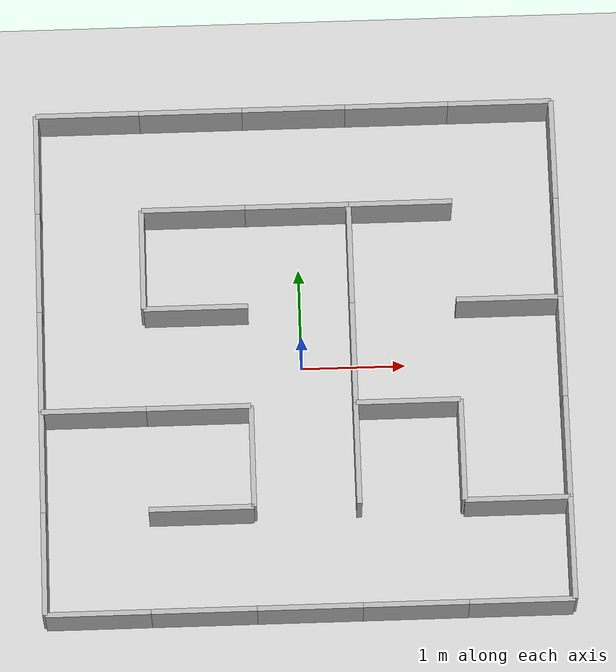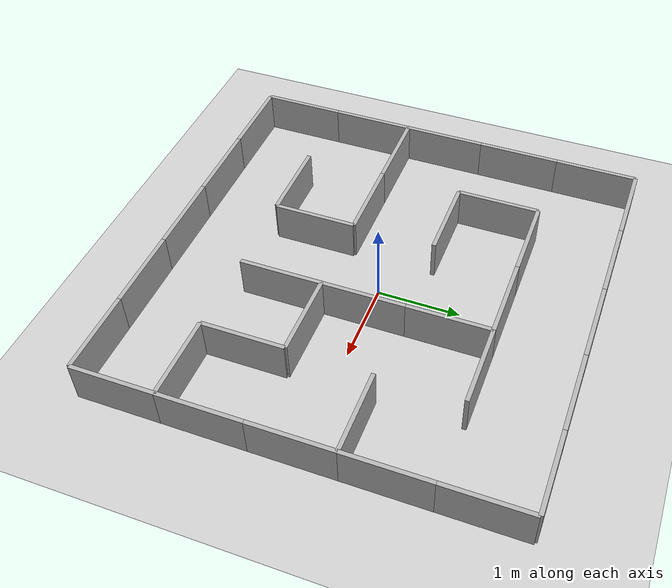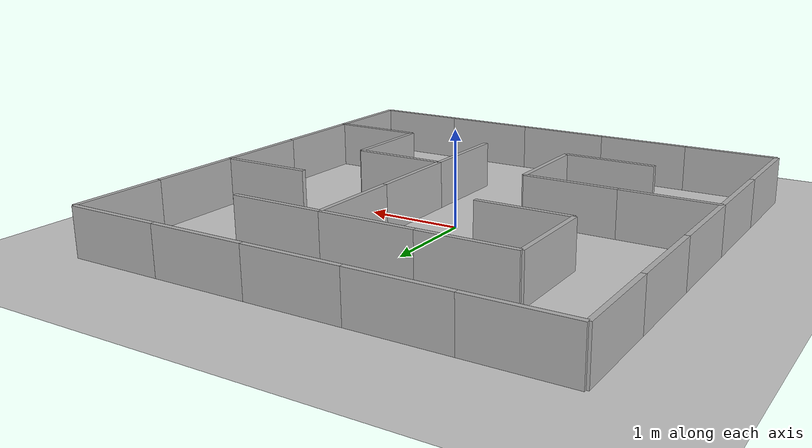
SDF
<?xml version="1.0" ?>
<sdf version="1.6">
  <world name="maze_world">

    <!-- 조명 -->
    <include>
      <uri>model://sun</uri>
    </include>

    <!-- 바닥 -->
    <include>
      <uri>model://ground_plane</uri>
    </include>

    <!-- 미로 벽들 -->
    <model name="maze">
      <static>true</static>
      <pose>0 0 0 0 0 0</pose>

      <link name="wall_0">
        <pose>-2.0 -2.5 0.25 0 0 0</pose>
        <collision name="collision">
          <geometry>
            <box>
              <size>1.0 0.05 0.5</size>
            </box>
          </geometry>
        </collision>
        <visual name="visual">
          <geometry>
            <box>
              <size>1.0 0.05 0.5</size>
            </box>
          </geometry>
          <material>
            <ambient>0.7 0.7 0.7 1</ambient>
            <diffuse>0.7 0.7 0.7 1</diffuse>
            <specular>0.1 0.1 0.1 1</specular>
          </material>
        </visual>
      </link>

      <link name="wall_1">
        <pose>-1.0 -2.5 0.25 0 0 0</pose>
        <collision name="collision">
          <geometry>
            <box>
              <size>1.0 0.05 0.5</size>
            </box>
          </geometry>
        </collision>
        <visual name="visual">
          <geometry>
            <box>
              <size>1.0 0.05 0.5</size>
            </box>
          </geometry>
          <material>
            <ambient>0.7 0.7 0.7 1</ambient>
            <diffuse>0.7 0.7 0.7 1</diffuse>
            <specular>0.1 0.1 0.1 1</specular>
          </material>
        </visual>
      </link>

      <link name="wall_2">
        <pose>0.0 -2.5 0.25 0 0 0</pose>
        <collision name="collision">
          <geometry>
            <box>
              <size>1.0 0.05 0.5</size>
            </box>
          </geometry>
        </collision>
        <visual name="visual">
          <geometry>
            <box>
              <size>1.0 0.05 0.5</size>
            </box>
          </geometry>
          <material>
            <ambient>0.7 0.7 0.7 1</ambient>
            <diffuse>0.7 0.7 0.7 1</diffuse>
            <specular>0.1 0.1 0.1 1</specular>
          </material>
        </visual>
      </link>

      <link name="wall_3">
        <pose>1.0 -2.5 0.25 0 0 0</pose>
        <collision name="collision">
          <geometry>
            <box>
              <size>1.0 0.05 0.5</size>
            </box>
          </geometry>
        </collision>
        <visual name="visual">
          <geometry>
            <box>
              <size>1.0 0.05 0.5</size>
            </box>
          </geometry>
          <material>
            <ambient>0.7 0.7 0.7 1</ambient>
            <diffuse>0.7 0.7 0.7 1</diffuse>
            <specular>0.1 0.1 0.1 1</specular>
          </material>
        </visual>
      </link>

      <link name="wall_4">
        <pose>2.0 -2.5 0.25 0 0 0</pose>
        <collision name="collision">
          <geometry>
            <box>
              <size>1.0 0.05 0.5</size>
            </box>
          </geometry>
        </collision>
        <visual name="visual">
          <geometry>
            <box>
              <size>1.0 0.05 0.5</size>
            </box>
          </geometry>
          <material>
            <ambient>0.7 0.7 0.7 1</ambient>
            <diffuse>0.7 0.7 0.7 1</diffuse>
            <specular>0.1 0.1 0.1 1</specular>
          </material>
        </visual>
      </link>

      <link name="wall_5">
        <pose>-1.0 -1.5 0.25 0 0 0</pose>
        <collision name="collision">
          <geometry>
            <box>
              <size>1.0 0.05 0.5</size>
            </box>
          </geometry>
        </collision>
        <visual name="visual">
          <geometry>
            <box>
              <size>1.0 0.05 0.5</size>
            </box>
          </geometry>
          <material>
            <ambient>0.7 0.7 0.7 1</ambient>
            <diffuse>0.7 0.7 0.7 1</diffuse>
            <specular>0.1 0.1 0.1 1</specular>
          </material>
        </visual>
      </link>

      <link name="wall_6">
        <pose>2.0 -1.5 0.25 0 0 0</pose>
        <collision name="collision">
          <geometry>
            <box>
              <size>1.0 0.05 0.5</size>
            </box>
          </geometry>
        </collision>
        <visual name="visual">
          <geometry>
            <box>
              <size>1.0 0.05 0.5</size>
            </box>
          </geometry>
          <material>
            <ambient>0.7 0.7 0.7 1</ambient>
            <diffuse>0.7 0.7 0.7 1</diffuse>
            <specular>0.1 0.1 0.1 1</specular>
          </material>
        </visual>
      </link>

      <link name="wall_7">
        <pose>-2.0 -0.5 0.25 0 0 0</pose>
        <collision name="collision">
          <geometry>
            <box>
              <size>1.0 0.05 0.5</size>
            </box>
          </geometry>
        </collision>
        <visual name="visual">
          <geometry>
            <box>
              <size>1.0 0.05 0.5</size>
            </box>
          </geometry>
          <material>
            <ambient>0.7 0.7 0.7 1</ambient>
            <diffuse>0.7 0.7 0.7 1</diffuse>
            <specular>0.1 0.1 0.1 1</specular>
          </material>
        </visual>
      </link>

      <link name="wall_8">
        <pose>-1.0 -0.5 0.25 0 0 0</pose>
        <collision name="collision">
          <geometry>
            <box>
              <size>1.0 0.05 0.5</size>
            </box>
          </geometry>
        </collision>
        <visual name="visual">
          <geometry>
            <box>
              <size>1.0 0.05 0.5</size>
            </box>
          </geometry>
          <material>
            <ambient>0.7 0.7 0.7 1</ambient>
            <diffuse>0.7 0.7 0.7 1</diffuse>
            <specular>0.1 0.1 0.1 1</specular>
          </material>
        </visual>
      </link>

      <link name="wall_9">
        <pose>1.0 -0.5 0.25 0 0 0</pose>
        <collision name="collision">
          <geometry>
            <box>
              <size>1.0 0.05 0.5</size>
            </box>
          </geometry>
        </collision>
        <visual name="visual">
          <geometry>
            <box>
              <size>1.0 0.05 0.5</size>
            </box>
          </geometry>
          <material>
            <ambient>0.7 0.7 0.7 1</ambient>
            <diffuse>0.7 0.7 0.7 1</diffuse>
            <specular>0.1 0.1 0.1 1</specular>
          </material>
        </visual>
      </link>

      <link name="wall_10">
        <pose>-1.0 0.5 0.25 0 0 0</pose>
        <collision name="collision">
          <geometry>
            <box>
              <size>1.0 0.05 0.5</size>
            </box>
          </geometry>
        </collision>
        <visual name="visual">
          <geometry>
            <box>
              <size>1.0 0.05 0.5</size>
            </box>
          </geometry>
          <material>
            <ambient>0.7 0.7 0.7 1</ambient>
            <diffuse>0.7 0.7 0.7 1</diffuse>
            <specular>0.1 0.1 0.1 1</specular>
          </material>
        </visual>
      </link>

      <link name="wall_11">
        <pose>2.0 0.5 0.25 0 0 0</pose>
        <collision name="collision">
          <geometry>
            <box>
              <size>1.0 0.05 0.5</size>
            </box>
          </geometry>
        </collision>
        <visual name="visual">
          <geometry>
            <box>
              <size>1.0 0.05 0.5</size>
            </box>
          </geometry>
          <material>
            <ambient>0.7 0.7 0.7 1</ambient>
            <diffuse>0.7 0.7 0.7 1</diffuse>
            <specular>0.1 0.1 0.1 1</specular>
          </material>
        </visual>
      </link>

      <link name="wall_12">
        <pose>-1.0 1.5 0.25 0 0 0</pose>
        <collision name="collision">
          <geometry>
            <box>
              <size>1.0 0.05 0.5</size>
            </box>
          </geometry>
        </collision>
        <visual name="visual">
          <geometry>
            <box>
              <size>1.0 0.05 0.5</size>
            </box>
          </geometry>
          <material>
            <ambient>0.7 0.7 0.7 1</ambient>
            <diffuse>0.7 0.7 0.7 1</diffuse>
            <specular>0.1 0.1 0.1 1</specular>
          </material>
        </visual>
      </link>

      <link name="wall_13">
        <pose>0.0 1.5 0.25 0 0 0</pose>
        <collision name="collision">
          <geometry>
            <box>
              <size>1.0 0.05 0.5</size>
            </box>
          </geometry>
        </collision>
        <visual name="visual">
          <geometry>
            <box>
              <size>1.0 0.05 0.5</size>
            </box>
          </geometry>
          <material>
            <ambient>0.7 0.7 0.7 1</ambient>
            <diffuse>0.7 0.7 0.7 1</diffuse>
            <specular>0.1 0.1 0.1 1</specular>
          </material>
        </visual>
      </link>

      <link name="wall_14">
        <pose>1.0 1.5 0.25 0 0 0</pose>
        <collision name="collision">
          <geometry>
            <box>
              <size>1.0 0.05 0.5</size>
            </box>
          </geometry>
        </collision>
        <visual name="visual">
          <geometry>
            <box>
              <size>1.0 0.05 0.5</size>
            </box>
          </geometry>
          <material>
            <ambient>0.7 0.7 0.7 1</ambient>
            <diffuse>0.7 0.7 0.7 1</diffuse>
            <specular>0.1 0.1 0.1 1</specular>
          </material>
        </visual>
      </link>

      <link name="wall_15">
        <pose>-2.0 2.5 0.25 0 0 0</pose>
        <collision name="collision">
          <geometry>
            <box>
              <size>1.0 0.05 0.5</size>
            </box>
          </geometry>
        </collision>
        <visual name="visual">
          <geometry>
            <box>
              <size>1.0 0.05 0.5</size>
            </box>
          </geometry>
          <material>
            <ambient>0.7 0.7 0.7 1</ambient>
            <diffuse>0.7 0.7 0.7 1</diffuse>
            <specular>0.1 0.1 0.1 1</specular>
          </material>
        </visual>
      </link>

      <link name="wall_16">
        <pose>-1.0 2.5 0.25 0 0 0</pose>
        <collision name="collision">
          <geometry>
            <box>
              <size>1.0 0.05 0.5</size>
            </box>
          </geometry>
        </collision>
        <visual name="visual">
          <geometry>
            <box>
              <size>1.0 0.05 0.5</size>
            </box>
          </geometry>
          <material>
            <ambient>0.7 0.7 0.7 1</ambient>
            <diffuse>0.7 0.7 0.7 1</diffuse>
            <specular>0.1 0.1 0.1 1</specular>
          </material>
        </visual>
      </link>

      <link name="wall_17">
        <pose>0.0 2.5 0.25 0 0 0</pose>
        <collision name="collision">
          <geometry>
            <box>
              <size>1.0 0.05 0.5</size>
            </box>
          </geometry>
        </collision>
        <visual name="visual">
          <geometry>
            <box>
              <size>1.0 0.05 0.5</size>
            </box>
          </geometry>
          <material>
            <ambient>0.7 0.7 0.7 1</ambient>
            <diffuse>0.7 0.7 0.7 1</diffuse>
            <specular>0.1 0.1 0.1 1</specular>
          </material>
        </visual>
      </link>

      <link name="wall_18">
        <pose>1.0 2.5 0.25 0 0 0</pose>
        <collision name="collision">
          <geometry>
            <box>
              <size>1.0 0.05 0.5</size>
            </box>
          </geometry>
        </collision>
        <visual name="visual">
          <geometry>
            <box>
              <size>1.0 0.05 0.5</size>
            </box>
          </geometry>
          <material>
            <ambient>0.7 0.7 0.7 1</ambient>
            <diffuse>0.7 0.7 0.7 1</diffuse>
            <specular>0.1 0.1 0.1 1</specular>
          </material>
        </visual>
      </link>

      <link name="wall_19">
        <pose>2.0 2.5 0.25 0 0 0</pose>
        <collision name="collision">
          <geometry>
            <box>
              <size>1.0 0.05 0.5</size>
            </box>
          </geometry>
        </collision>
        <visual name="visual">
          <geometry>
            <box>
              <size>1.0 0.05 0.5</size>
            </box>
          </geometry>
          <material>
            <ambient>0.7 0.7 0.7 1</ambient>
            <diffuse>0.7 0.7 0.7 1</diffuse>
            <specular>0.1 0.1 0.1 1</specular>
          </material>
        </visual>
      </link>

      <link name="wall_20">
        <pose>-2.5 -2.0 0.25 0 0 0</pose>
        <collision name="collision">
          <geometry>
            <box>
              <size>0.05 1.0 0.5</size>
            </box>
          </geometry>
        </collision>
        <visual name="visual">
          <geometry>
            <box>
              <size>0.05 1.0 0.5</size>
            </box>
          </geometry>
          <material>
            <ambient>0.7 0.7 0.7 1</ambient>
            <diffuse>0.7 0.7 0.7 1</diffuse>
            <specular>0.1 0.1 0.1 1</specular>
          </material>
        </visual>
      </link>

      <link name="wall_21">
        <pose>2.5 -2.0 0.25 0 0 0</pose>
        <collision name="collision">
          <geometry>
            <box>
              <size>0.05 1.0 0.5</size>
            </box>
          </geometry>
        </collision>
        <visual name="visual">
          <geometry>
            <box>
              <size>0.05 1.0 0.5</size>
            </box>
          </geometry>
          <material>
            <ambient>0.7 0.7 0.7 1</ambient>
            <diffuse>0.7 0.7 0.7 1</diffuse>
            <specular>0.1 0.1 0.1 1</specular>
          </material>
        </visual>
      </link>

      <link name="wall_22">
        <pose>-2.5 -1.0 0.25 0 0 0</pose>
        <collision name="collision">
          <geometry>
            <box>
              <size>0.05 1.0 0.5</size>
            </box>
          </geometry>
        </collision>
        <visual name="visual">
          <geometry>
            <box>
              <size>0.05 1.0 0.5</size>
            </box>
          </geometry>
          <material>
            <ambient>0.7 0.7 0.7 1</ambient>
            <diffuse>0.7 0.7 0.7 1</diffuse>
            <specular>0.1 0.1 0.1 1</specular>
          </material>
        </visual>
      </link>

      <link name="wall_23">
        <pose>-0.5 -1.0 0.25 0 0 0</pose>
        <collision name="collision">
          <geometry>
            <box>
              <size>0.05 1.0 0.5</size>
            </box>
          </geometry>
        </collision>
        <visual name="visual">
          <geometry>
            <box>
              <size>0.05 1.0 0.5</size>
            </box>
          </geometry>
          <material>
            <ambient>0.7 0.7 0.7 1</ambient>
            <diffuse>0.7 0.7 0.7 1</diffuse>
            <specular>0.1 0.1 0.1 1</specular>
          </material>
        </visual>
      </link>

      <link name="wall_24">
        <pose>0.5 -1.0 0.25 0 0 0</pose>
        <collision name="collision">
          <geometry>
            <box>
              <size>0.05 1.0 0.5</size>
            </box>
          </geometry>
        </collision>
        <visual name="visual">
          <geometry>
            <box>
              <size>0.05 1.0 0.5</size>
            </box>
          </geometry>
          <material>
            <ambient>0.7 0.7 0.7 1</ambient>
            <diffuse>0.7 0.7 0.7 1</diffuse>
            <specular>0.1 0.1 0.1 1</specular>
          </material>
        </visual>
      </link>

      <link name="wall_25">
        <pose>1.5 -1.0 0.25 0 0 0</pose>
        <collision name="collision">
          <geometry>
            <box>
              <size>0.05 1.0 0.5</size>
            </box>
          </geometry>
        </collision>
        <visual name="visual">
          <geometry>
            <box>
              <size>0.05 1.0 0.5</size>
            </box>
          </geometry>
          <material>
            <ambient>0.7 0.7 0.7 1</ambient>
            <diffuse>0.7 0.7 0.7 1</diffuse>
            <specular>0.1 0.1 0.1 1</specular>
          </material>
        </visual>
      </link>

      <link name="wall_26">
        <pose>2.5 -1.0 0.25 0 0 0</pose>
        <collision name="collision">
          <geometry>
            <box>
              <size>0.05 1.0 0.5</size>
            </box>
          </geometry>
        </collision>
        <visual name="visual">
          <geometry>
            <box>
              <size>0.05 1.0 0.5</size>
            </box>
          </geometry>
          <material>
            <ambient>0.7 0.7 0.7 1</ambient>
            <diffuse>0.7 0.7 0.7 1</diffuse>
            <specular>0.1 0.1 0.1 1</specular>
          </material>
        </visual>
      </link>

      <link name="wall_27">
        <pose>-2.5 0.0 0.25 0 0 0</pose>
        <collision name="collision">
          <geometry>
            <box>
              <size>0.05 1.0 0.5</size>
            </box>
          </geometry>
        </collision>
        <visual name="visual">
          <geometry>
            <box>
              <size>0.05 1.0 0.5</size>
            </box>
          </geometry>
          <material>
            <ambient>0.7 0.7 0.7 1</ambient>
            <diffuse>0.7 0.7 0.7 1</diffuse>
            <specular>0.1 0.1 0.1 1</specular>
          </material>
        </visual>
      </link>

      <link name="wall_28">
        <pose>0.5 0.0 0.25 0 0 0</pose>
        <collision name="collision">
          <geometry>
            <box>
              <size>0.05 1.0 0.5</size>
            </box>
          </geometry>
        </collision>
        <visual name="visual">
          <geometry>
            <box>
              <size>0.05 1.0 0.5</size>
            </box>
          </geometry>
          <material>
            <ambient>0.7 0.7 0.7 1</ambient>
            <diffuse>0.7 0.7 0.7 1</diffuse>
            <specular>0.1 0.1 0.1 1</specular>
          </material>
        </visual>
      </link>

      <link name="wall_29">
        <pose>2.5 0.0 0.25 0 0 0</pose>
        <collision name="collision">
          <geometry>
            <box>
              <size>0.05 1.0 0.5</size>
            </box>
          </geometry>
        </collision>
        <visual name="visual">
          <geometry>
            <box>
              <size>0.05 1.0 0.5</size>
            </box>
          </geometry>
          <material>
            <ambient>0.7 0.7 0.7 1</ambient>
            <diffuse>0.7 0.7 0.7 1</diffuse>
            <specular>0.1 0.1 0.1 1</specular>
          </material>
        </visual>
      </link>

      <link name="wall_30">
        <pose>-2.5 1.0 0.25 0 0 0</pose>
        <collision name="collision">
          <geometry>
            <box>
              <size>0.05 1.0 0.5</size>
            </box>
          </geometry>
        </collision>
        <visual name="visual">
          <geometry>
            <box>
              <size>0.05 1.0 0.5</size>
            </box>
          </geometry>
          <material>
            <ambient>0.7 0.7 0.7 1</ambient>
            <diffuse>0.7 0.7 0.7 1</diffuse>
            <specular>0.1 0.1 0.1 1</specular>
          </material>
        </visual>
      </link>

      <link name="wall_31">
        <pose>-1.5 1.0 0.25 0 0 0</pose>
        <collision name="collision">
          <geometry>
            <box>
              <size>0.05 1.0 0.5</size>
            </box>
          </geometry>
        </collision>
        <visual name="visual">
          <geometry>
            <box>
              <size>0.05 1.0 0.5</size>
            </box>
          </geometry>
          <material>
            <ambient>0.7 0.7 0.7 1</ambient>
            <diffuse>0.7 0.7 0.7 1</diffuse>
            <specular>0.1 0.1 0.1 1</specular>
          </material>
        </visual>
      </link>

      <link name="wall_32">
        <pose>0.5 1.0 0.25 0 0 0</pose>
        <collision name="collision">
          <geometry>
            <box>
              <size>0.05 1.0 0.5</size>
            </box>
          </geometry>
        </collision>
        <visual name="visual">
          <geometry>
            <box>
              <size>0.05 1.0 0.5</size>
            </box>
          </geometry>
          <material>
            <ambient>0.7 0.7 0.7 1</ambient>
            <diffuse>0.7 0.7 0.7 1</diffuse>
            <specular>0.1 0.1 0.1 1</specular>
          </material>
        </visual>
      </link>

      <link name="wall_33">
        <pose>2.5 1.0 0.25 0 0 0</pose>
        <collision name="collision">
          <geometry>
            <box>
              <size>0.05 1.0 0.5</size>
            </box>
          </geometry>
        </collision>
        <visual name="visual">
          <geometry>
            <box>
              <size>0.05 1.0 0.5</size>
            </box>
          </geometry>
          <material>
            <ambient>0.7 0.7 0.7 1</ambient>
            <diffuse>0.7 0.7 0.7 1</diffuse>
            <specular>0.1 0.1 0.1 1</specular>
          </material>
        </visual>
      </link>

      <link name="wall_34">
        <pose>-2.5 2.0 0.25 0 0 0</pose>
        <collision name="collision">
          <geometry>
            <box>
              <size>0.05 1.0 0.5</size>
            </box>
          </geometry>
        </collision>
        <visual name="visual">
          <geometry>
            <box>
              <size>0.05 1.0 0.5</size>
            </box>
          </geometry>
          <material>
            <ambient>0.7 0.7 0.7 1</ambient>
            <diffuse>0.7 0.7 0.7 1</diffuse>
            <specular>0.1 0.1 0.1 1</specular>
          </material>
        </visual>
      </link>

      <link name="wall_35">
        <pose>2.5 2.0 0.25 0 0 0</pose>
        <collision name="collision">
          <geometry>
            <box>
              <size>0.05 1.0 0.5</size>
            </box>
          </geometry>
        </collision>
        <visual name="visual">
          <geometry>
            <box>
              <size>0.05 1.0 0.5</size>
            </box>
          </geometry>
          <material>
            <ambient>0.7 0.7 0.7 1</ambient>
            <diffuse>0.7 0.7 0.7 1</diffuse>
            <specular>0.1 0.1 0.1 1</specular>
          </material>
        </visual>
      </link>
    </model>
  </world>
</sdf>
